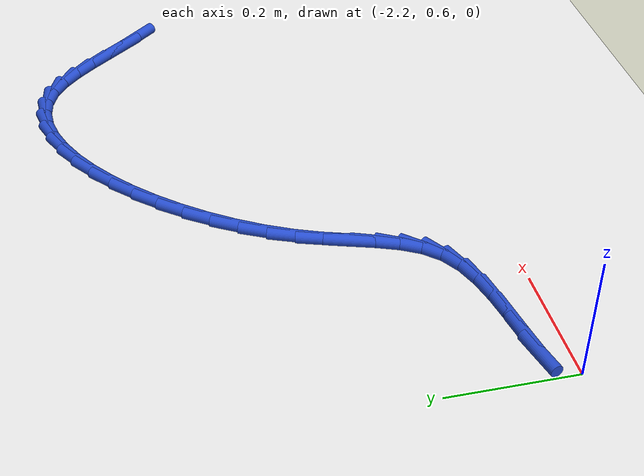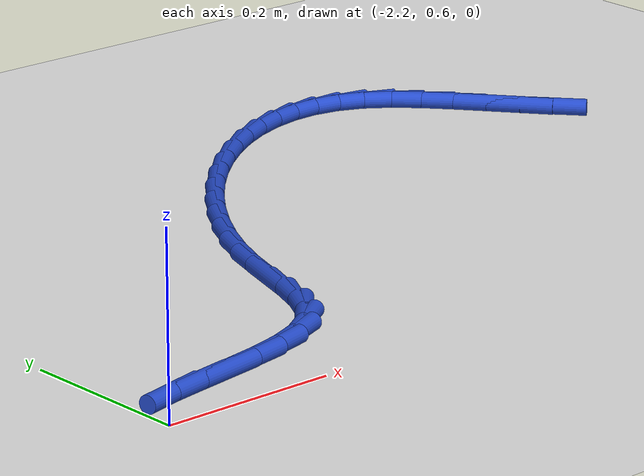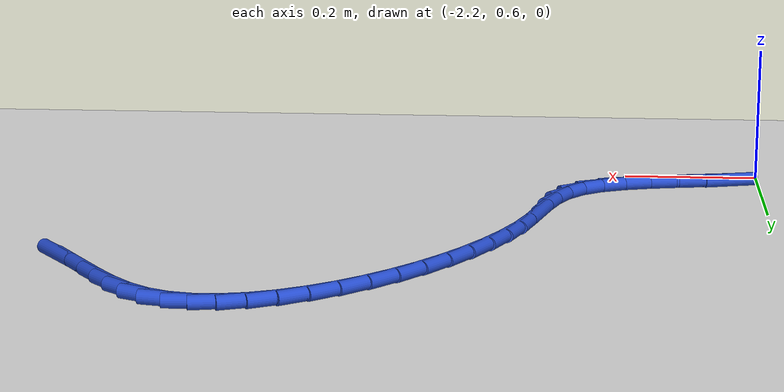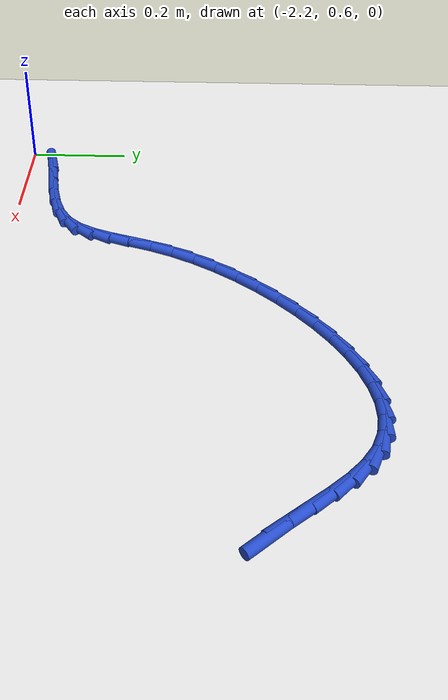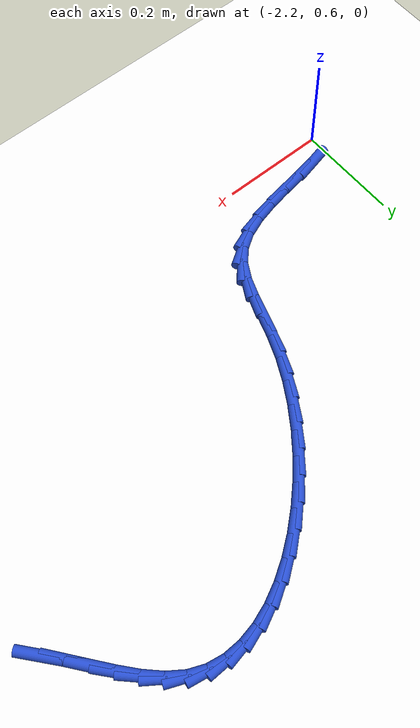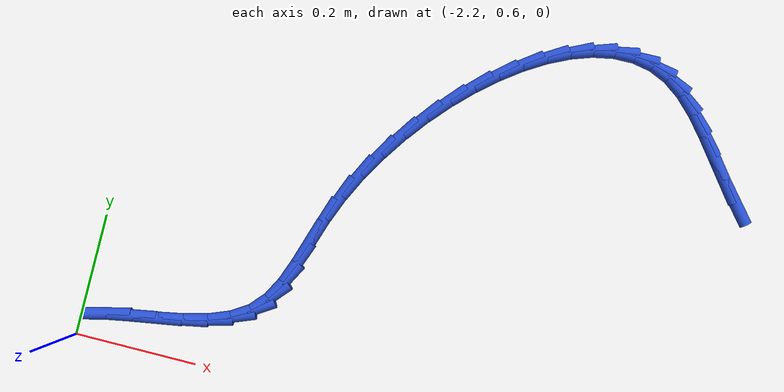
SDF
<sdf version="1.6">
 <world name="default">
  <model name="ground_plane">
   <static>1</static>
   <link name="link">
    <collision name="collision">
     <geometry><plane><normal>0 0 1</normal><size>100 100</size></plane></geometry>
     <surface><friction><ode><mu>100</mu><mu2>50</mu2></ode></friction></surface>
    </collision>
    <visual name="visual">
     <cast_shadows>0</cast_shadows>
     <geometry><plane><normal>0 0 1</normal><size>100 100</size></plane></geometry>
     <material>
      <script><uri>file://media/materials/scripts/gazebo.material</uri><name>Gazebo/WhiteGlow</name></script>
     </material>
    </visual>
   </link>
  </model>
  <model name="line">
   <link name="link_50">
    <pose>-1.2177295385535447 1.0717347565997681 0.01 0 1.57 -0.8741696562402795</pose>
    <collision name="collision">
     <geometry><cylinder><radius>0.01</radius><length>0.08</length></cylinder></geometry>
    </collision>
    <visual name="visual">
     <material>
      <script><name>Gazebo/Blue</name><uri>file://media/materials/scripts/gazebo.material</uri></script>
     </material>
     <geometry><cylinder><radius>0.01</radius><length>0.08</length></cylinder></geometry>
    </visual>
   </link>
   <link name="link_51">
    <pose>-1.2432224340740237 1.1022090335018886 0.01 0 1.57 -0.9116368911753141</pose>
    <collision name="collision">
     <geometry><cylinder><radius>0.01</radius><length>0.08</length></cylinder></geometry>
    </collision>
    <visual name="visual">
     <material>
      <script><name>Gazebo/Blue</name><uri>file://media/materials/scripts/gazebo.material</uri></script>
     </material>
     <geometry><cylinder><radius>0.01</radius><length>0.08</length></cylinder></geometry>
    </visual>
   </link>
   <link name="link_52">
    <pose>-1.267933365321975 1.1341040276184626 0.01 0 1.57 -0.9095792920194257</pose>
    <collision name="collision">
     <geometry><cylinder><radius>0.01</radius><length>0.08</length></cylinder></geometry>
    </collision>
    <visual name="visual">
     <material>
      <script><name>Gazebo/Blue</name><uri>file://media/materials/scripts/gazebo.material</uri></script>
     </material>
     <geometry><cylinder><radius>0.01</radius><length>0.08</length></cylinder></geometry>
    </visual>
   </link>
   <link name="link_53">
    <pose>-1.292481742572587 1.165654905870876 0.01 0 1.57 -0.8667047840840384</pose>
    <collision name="collision">
     <geometry><cylinder><radius>0.01</radius><length>0.08</length></cylinder></geometry>
    </collision>
    <visual name="visual">
     <material>
      <script><name>Gazebo/Blue</name><uri>file://media/materials/scripts/gazebo.material</uri></script>
     </material>
     <geometry><cylinder><radius>0.01</radius><length>0.08</length></cylinder></geometry>
    </visual>
   </link>
   <link name="link_54">
    <pose>-1.3174869761010477 1.1950968351805147 0.01 0 1.57 -0.7754593561392966</pose>
    <collision name="collision">
     <geometry><cylinder><radius>0.01</radius><length>0.08</length></cylinder></geometry>
    </collision>
    <visual name="visual">
     <material>
      <script><name>Gazebo/Blue</name><uri>file://media/materials/scripts/gazebo.material</uri></script>
     </material>
     <geometry><cylinder><radius>0.01</radius><length>0.08</length></cylinder></geometry>
    </visual>
   </link>
   <link name="link_55">
    <pose>-1.3435684761825448 1.2206649824687636 0.01 0 1.57 -0.6223605549805019</pose>
    <collision name="collision">
     <geometry><cylinder><radius>0.01</radius><length>0.08</length></cylinder></geometry>
    </collision>
    <visual name="visual">
     <material>
      <script><name>Gazebo/Blue</name><uri>file://media/materials/scripts/gazebo.material</uri></script>
     </material>
     <geometry><cylinder><radius>0.01</radius><length>0.08</length></cylinder></geometry>
    </visual>
   </link>
   <link name="link_56">
    <pose>-1.371345653092268 1.2405945146570099 0.01 0 1.57 -0.4054876587730237</pose>
    <collision name="collision">
     <geometry><cylinder><radius>0.01</radius><length>0.08</length></cylinder></geometry>
    </collision>
    <visual name="visual">
     <material>
      <script><name>Gazebo/Blue</name><uri>file://media/materials/scripts/gazebo.material</uri></script>
     </material>
     <geometry><cylinder><radius>0.01</radius><length>0.08</length></cylinder></geometry>
    </visual>
   </link>
   <link name="link_57">
    <pose>-1.4012883910001843 1.2534482411803511 0.01 0 1.57 -0.18110048506655507</pose>
    <collision name="collision">
     <geometry><cylinder><radius>0.01</radius><length>0.08</length></cylinder></geometry>
    </collision>
    <visual name="visual">
     <material>
      <script><name>Gazebo/Blue</name><uri>file://media/materials/scripts/gazebo.material</uri></script>
     </material>
     <geometry><cylinder><radius>0.01</radius><length>0.08</length></cylinder></geometry>
    </visual>
   </link>
   <link name="link_58">
    <pose>-1.4331823538902666 1.2592882389184827 0.01 0 1.57 0.020426566300501093</pose>
    <collision name="collision">
     <geometry><cylinder><radius>0.01</radius><length>0.08</length></cylinder></geometry>
    </collision>
    <visual name="visual">
     <material>
      <script><name>Gazebo/Blue</name><uri>file://media/materials/scripts/gazebo.material</uri></script>
     </material>
     <geometry><cylinder><radius>0.01</radius><length>0.08</length></cylinder></geometry>
    </visual>
   </link>
   <link name="link_59">
    <pose>-1.4666176094955612 1.2586051764490662 0.01 0 1.57 0.19188457313150134</pose>
    <collision name="collision">
     <geometry><cylinder><radius>0.01</radius><length>0.08</length></cylinder></geometry>
    </collision>
    <visual name="visual">
     <material>
      <script><name>Gazebo/Blue</name><uri>file://media/materials/scripts/gazebo.material</uri></script>
     </material>
     <geometry><cylinder><radius>0.01</radius><length>0.08</length></cylinder></geometry>
    </visual>
   </link>
   <link name="link_60">
    <pose>-1.501184210137573 1.2518897561196243 0.01 0 1.57 0.3343067527025954</pose>
    <collision name="collision">
     <geometry><cylinder><radius>0.01</radius><length>0.08</length></cylinder></geometry>
    </collision>
    <visual name="visual">
     <material>
      <script><name>Gazebo/Blue</name><uri>file://media/materials/scripts/gazebo.material</uri></script>
     </material>
     <geometry><cylinder><radius>0.01</radius><length>0.08</length></cylinder></geometry>
    </visual>
   </link>
   <link name="link_61">
    <pose>-1.536472208137808 1.2396326802776796 0.01 0 1.57 0.45253718787691133</pose>
    <collision name="collision">
     <geometry><cylinder><radius>0.01</radius><length>0.08</length></cylinder></geometry>
    </collision>
    <visual name="visual">
     <material>
      <script><name>Gazebo/Blue</name><uri>file://media/materials/scripts/gazebo.material</uri></script>
     </material>
     <geometry><cylinder><radius>0.01</radius><length>0.08</length></cylinder></geometry>
    </visual>
   </link>
   <link name="link_62">
    <pose>-1.5720716558177714 1.2223246512707548 0.01 0 1.57 0.5520949801280083</pose>
    <collision name="collision">
     <geometry><cylinder><radius>0.01</radius><length>0.08</length></cylinder></geometry>
    </collision>
    <visual name="visual">
     <material>
      <script><name>Gazebo/Blue</name><uri>file://media/materials/scripts/gazebo.material</uri></script>
     </material>
     <geometry><cylinder><radius>0.01</radius><length>0.08</length></cylinder></geometry>
    </visual>
   </link>
   <link name="link_63">
    <pose>-1.6075726054989683 1.2004563714463732 0.01 0 1.57 0.637870811399206</pose>
    <collision name="collision">
     <geometry><cylinder><radius>0.01</radius><length>0.08</length></cylinder></geometry>
    </collision>
    <visual name="visual">
     <material>
      <script><name>Gazebo/Blue</name><uri>file://media/materials/scripts/gazebo.material</uri></script>
     </material>
     <geometry><cylinder><radius>0.01</radius><length>0.08</length></cylinder></geometry>
    </visual>
   </link>
   <link name="link_64">
    <pose>-1.6425651095029041 1.174518543152058 0.01 0 1.57 0.7138523041166956</pose>
    <collision name="collision">
     <geometry><cylinder><radius>0.01</radius><length>0.08</length></cylinder></geometry>
    </collision>
    <visual name="visual">
     <material>
      <script><name>Gazebo/Blue</name><uri>file://media/materials/scripts/gazebo.material</uri></script>
     </material>
     <geometry><cylinder><radius>0.01</radius><length>0.08</length></cylinder></geometry>
    </visual>
   </link>
   <link name="link_65">
    <pose>-1.6766392201510851 1.1450018687353314 0.01 0 1.57 0.7832413166347811</pose>
    <collision name="collision">
     <geometry><cylinder><radius>0.01</radius><length>0.08</length></cylinder></geometry>
    </collision>
    <visual name="visual">
     <material>
      <script><name>Gazebo/Blue</name><uri>file://media/materials/scripts/gazebo.material</uri></script>
     </material>
     <geometry><cylinder><radius>0.01</radius><length>0.08</length></cylinder></geometry>
    </visual>
   </link>
   <link name="link_66">
    <pose>-1.7093849897650153 1.1123970505437162 0.01 0 1.57 0.8486695127289309</pose>
    <collision name="collision">
     <geometry><cylinder><radius>0.01</radius><length>0.08</length></cylinder></geometry>
    </collision>
    <visual name="visual">
     <material>
      <script><name>Gazebo/Blue</name><uri>file://media/materials/scripts/gazebo.material</uri></script>
     </material>
     <geometry><cylinder><radius>0.01</radius><length>0.08</length></cylinder></geometry>
    </visual>
   </link>
   <link name="link_67">
    <pose>-1.740392470666201 1.0771947909247357 0.01 0 1.57 0.9124117640541846</pose>
    <collision name="collision">
     <geometry><cylinder><radius>0.01</radius><length>0.08</length></cylinder></geometry>
    </collision>
    <visual name="visual">
     <material>
      <script><name>Gazebo/Blue</name><uri>file://media/materials/scripts/gazebo.material</uri></script>
     </material>
     <geometry><cylinder><radius>0.01</radius><length>0.08</length></cylinder></geometry>
    </visual>
   </link>
   <link name="link_68">
    <pose>-1.7692517151761478 1.0398857922259128 0.01 0 1.57 0.9765762587988626</pose>
    <collision name="collision">
     <geometry><cylinder><radius>0.01</radius><length>0.08</length></cylinder></geometry>
    </collision>
    <visual name="visual">
     <material>
      <script><name>Gazebo/Blue</name><uri>file://media/materials/scripts/gazebo.material</uri></script>
     </material>
     <geometry><cylinder><radius>0.01</radius><length>0.08</length></cylinder></geometry>
    </visual>
   </link>
   <link name="link_69">
    <pose>-1.79555277561636 1.0009607567947698 0.01 0 1.57 1.0432769722912378</pose>
    <collision name="collision">
     <geometry><cylinder><radius>0.01</radius><length>0.08</length></cylinder></geometry>
    </collision>
    <visual name="visual">
     <material>
      <script><name>Gazebo/Blue</name><uri>file://media/materials/scripts/gazebo.material</uri></script>
     </material>
     <geometry><cylinder><radius>0.01</radius><length>0.08</length></cylinder></geometry>
    </visual>
   </link>
   <link name="link_70">
    <pose>-1.8188857043083444 0.9609103869788304 0.01 0 1.57 1.1148002284520568</pose>
    <collision name="collision">
     <geometry><cylinder><radius>0.01</radius><length>0.08</length></cylinder></geometry>
    </collision>
    <visual name="visual">
     <material>
      <script><name>Gazebo/Blue</name><uri>file://media/materials/scripts/gazebo.material</uri></script>
     </material>
     <geometry><cylinder><radius>0.01</radius><length>0.08</length></cylinder></geometry>
    </visual>
   </link>
   <link name="link_71">
    <pose>-1.838840553573605 0.920225385125617 0.01 0 1.57 1.1932738534176512</pose>
    <collision name="collision">
     <geometry><cylinder><radius>0.01</radius><length>0.08</length></cylinder></geometry>
    </collision>
    <visual name="visual">
     <material>
      <script><name>Gazebo/Blue</name><uri>file://media/materials/scripts/gazebo.material</uri></script>
     </material>
     <geometry><cylinder><radius>0.01</radius><length>0.08</length></cylinder></geometry>
    </visual>
   </link>
   <link name="link_72">
    <pose>-1.8550285310523795 0.879402608929121 0.01 0 1.57 1.256429184824553</pose>
    <collision name="collision">
     <geometry><cylinder><radius>0.01</radius><length>0.08</length></cylinder></geometry>
    </collision>
    <visual name="visual">
     <material>
      <script><name>Gazebo/Blue</name><uri>file://media/materials/scripts/gazebo.material</uri></script>
     </material>
     <geometry><cylinder><radius>0.01</radius><length>0.08</length></cylinder></geometry>
    </visual>
   </link>
   <link name="link_73">
    <pose>-1.868088098159212 0.839237805595352 0.01 0 1.57 1.2661865175130402</pose>
    <collision name="collision">
     <geometry><cylinder><radius>0.01</radius><length>0.08</length></cylinder></geometry>
    </collision>
    <visual name="visual">
     <material>
      <script><name>Gazebo/Blue</name><uri>file://media/materials/scripts/gazebo.material</uri></script>
     </material>
     <geometry><cylinder><radius>0.01</radius><length>0.08</length></cylinder></geometry>
    </visual>
   </link>
   <link name="link_74">
    <pose>-1.8801244733007618 0.8009534895932732 0.01 0 1.57 1.2107726769507565</pose>
    <collision name="collision">
     <geometry><cylinder><radius>0.01</radius><length>0.08</length></cylinder></geometry>
    </collision>
    <visual name="visual">
     <material>
      <script><name>Gazebo/Blue</name><uri>file://media/materials/scripts/gazebo.material</uri></script>
     </material>
     <geometry><cylinder><radius>0.01</radius><length>0.08</length></cylinder></geometry>
    </visual>
   </link>
   <link name="link_75">
    <pose>-1.893355441273737 0.7658049276817241 0.01 0 1.57 1.0748007293436144</pose>
    <collision name="collision">
     <geometry><cylinder><radius>0.01</radius><length>0.08</length></cylinder></geometry>
    </collision>
    <visual name="visual">
     <material>
      <script><name>Gazebo/Blue</name><uri>file://media/materials/scripts/gazebo.material</uri></script>
     </material>
     <geometry><cylinder><radius>0.01</radius><length>0.08</length></cylinder></geometry>
    </visual>
   </link>
   <link name="link_76">
    <pose>-1.9099987868748478 0.7350473866195439 0.01 0 1.57 0.8452651993104219</pose>
    <collision name="collision">
     <geometry><cylinder><radius>0.01</radius><length>0.08</length></cylinder></geometry>
    </collision>
    <visual name="visual">
     <material>
      <script><name>Gazebo/Blue</name><uri>file://media/materials/scripts/gazebo.material</uri></script>
     </material>
     <geometry><cylinder><radius>0.01</radius><length>0.08</length></cylinder></geometry>
    </visual>
   </link>
   <link name="link_77">
    <pose>-1.9322708612131148 0.7099351607765856 0.01 0 1.57 0.5734886037261481</pose>
    <collision name="collision">
     <geometry><cylinder><radius>0.01</radius><length>0.08</length></cylinder></geometry>
    </collision>
    <visual name="visual">
     <material>
      <script><name>Gazebo/Blue</name><uri>file://media/materials/scripts/gazebo.material</uri></script>
     </material>
     <geometry><cylinder><radius>0.01</radius><length>0.08</length></cylinder></geometry>
    </visual>
   </link>
   <link name="link_78">
    <pose>-1.961451488005 0.6910873511468203 0.01 0 1.57 0.37471797323229117</pose>
    <collision name="collision">
     <geometry><cylinder><radius>0.01</radius><length>0.08</length></cylinder></geometry>
    </collision>
    <visual name="visual">
     <material>
      <script><name>Gazebo/Blue</name><uri>file://media/materials/scripts/gazebo.material</uri></script>
     </material>
     <geometry><cylinder><radius>0.01</radius><length>0.08</length></cylinder></geometry>
    </visual>
   </link>
   <link name="link_79">
    <pose>-1.996269994416055 0.6773932016722898 0.01 0 1.57 0.2511391753238968</pose>
    <collision name="collision">
     <geometry><cylinder><radius>0.01</radius><length>0.08</length></cylinder></geometry>
    </collision>
    <visual name="visual">
     <material>
      <script><name>Gazebo/Blue</name><uri>file://media/materials/scripts/gazebo.material</uri></script>
     </material>
     <geometry><cylinder><radius>0.01</radius><length>0.08</length></cylinder></geometry>
    </visual>
   </link>
   <link name="link_80">
    <pose>-2.035025589855496 0.6674502318331115 0.01 0 1.57 0.1831858030394288</pose>
    <collision name="collision">
     <geometry><cylinder><radius>0.01</radius><length>0.08</length></cylinder></geometry>
    </collision>
    <visual name="visual">
     <material>
      <script><name>Gazebo/Blue</name><uri>file://media/materials/scripts/gazebo.material</uri></script>
     </material>
     <geometry><cylinder><radius>0.01</radius><length>0.08</length></cylinder></geometry>
    </visual>
   </link>
   <link name="link_81">
    <pose>-2.076017483732542 0.6598559611094028 0.01 0 1.57 0.15874138001732746</pose>
    <collision name="collision">
     <geometry><cylinder><radius>0.01</radius><length>0.08</length></cylinder></geometry>
    </collision>
    <visual name="visual">
     <material>
      <script><name>Gazebo/Blue</name><uri>file://media/materials/scripts/gazebo.material</uri></script>
     </material>
     <geometry><cylinder><radius>0.01</radius><length>0.08</length></cylinder></geometry>
    </visual>
   </link>
   <link name="link_82">
    <pose>-2.117544885456411 0.6532079089812816 0.01 0 1.57 0.17422975129140453</pose>
    <collision name="collision">
     <geometry><cylinder><radius>0.01</radius><length>0.08</length></cylinder></geometry>
    </collision>
    <visual name="visual">
     <material>
      <script><name>Gazebo/Blue</name><uri>file://media/materials/scripts/gazebo.material</uri></script>
     </material>
     <geometry><cylinder><radius>0.01</radius><length>0.08</length></cylinder></geometry>
    </visual>
   </link>
   <link name="link_83">
    <pose>-2.157907004436319 0.6461035949288648 0.01 0 1.57 0.23463711163463105</pose>
    <collision name="collision">
     <geometry><cylinder><radius>0.01</radius><length>0.08</length></cylinder></geometry>
    </collision>
    <visual name="visual">
     <material>
      <script><name>Gazebo/Blue</name><uri>file://media/materials/scripts/gazebo.material</uri></script>
     </material>
     <geometry><cylinder><radius>0.01</radius><length>0.08</length></cylinder></geometry>
    </visual>
   </link>
  </model>
 </world>
</sdf>
